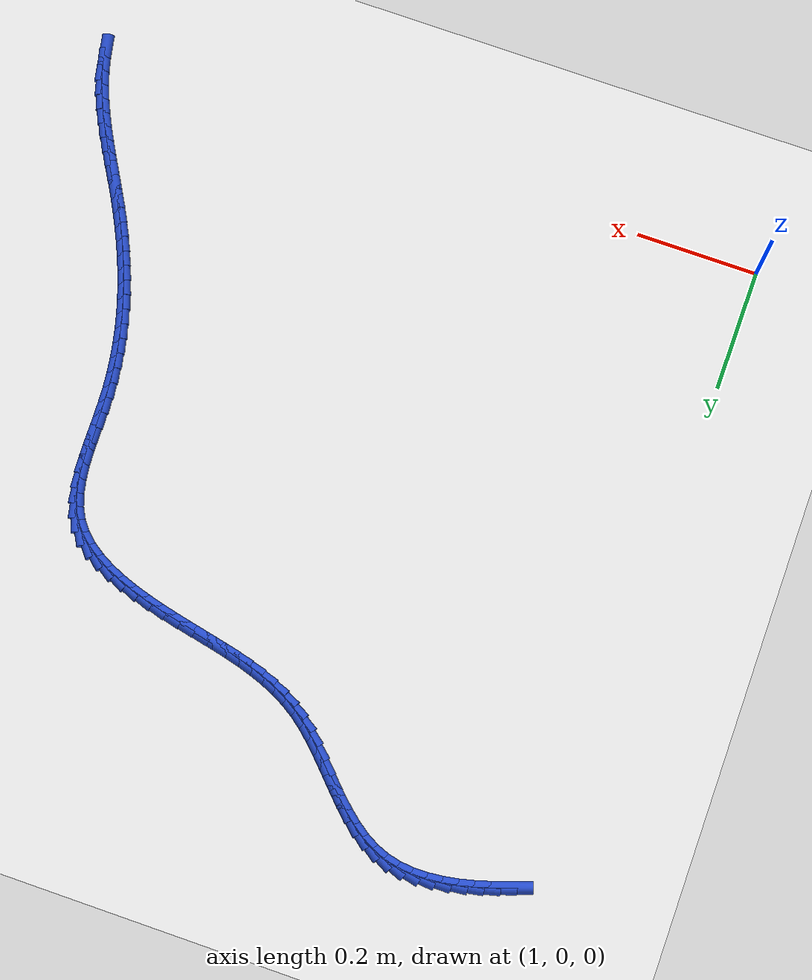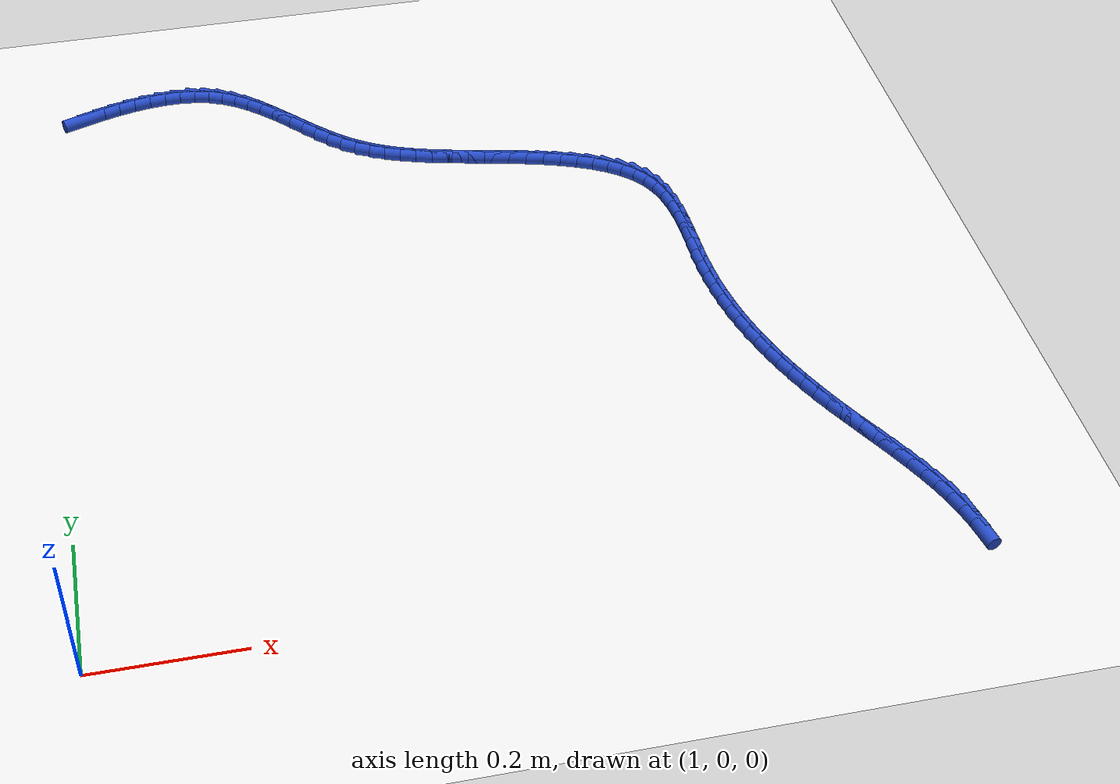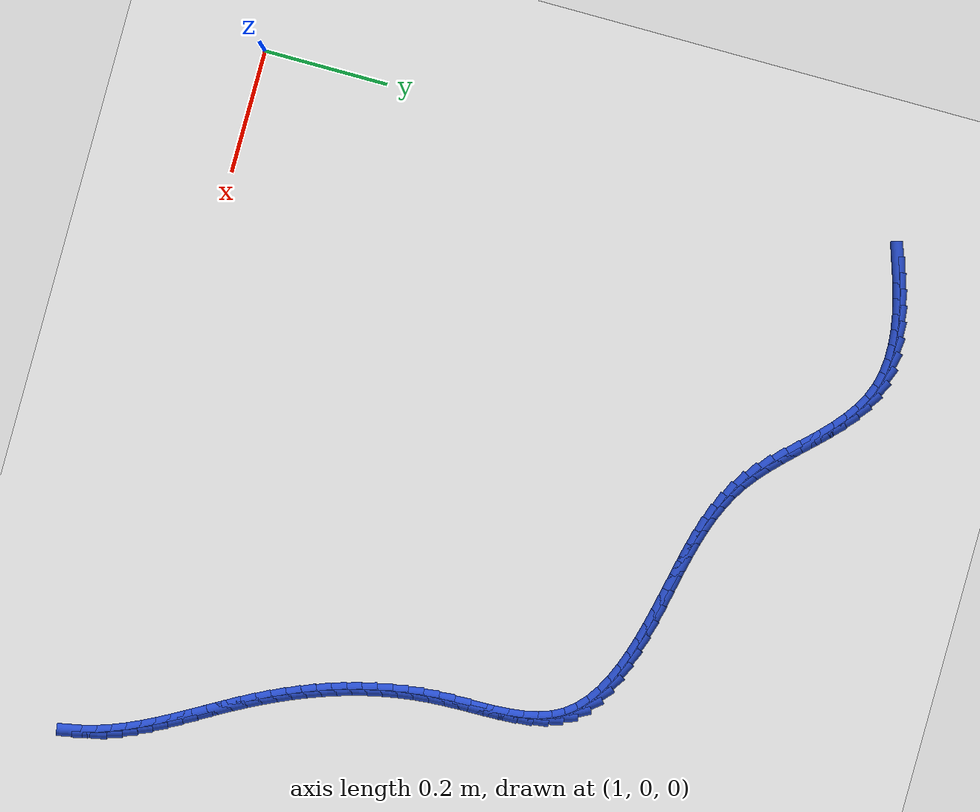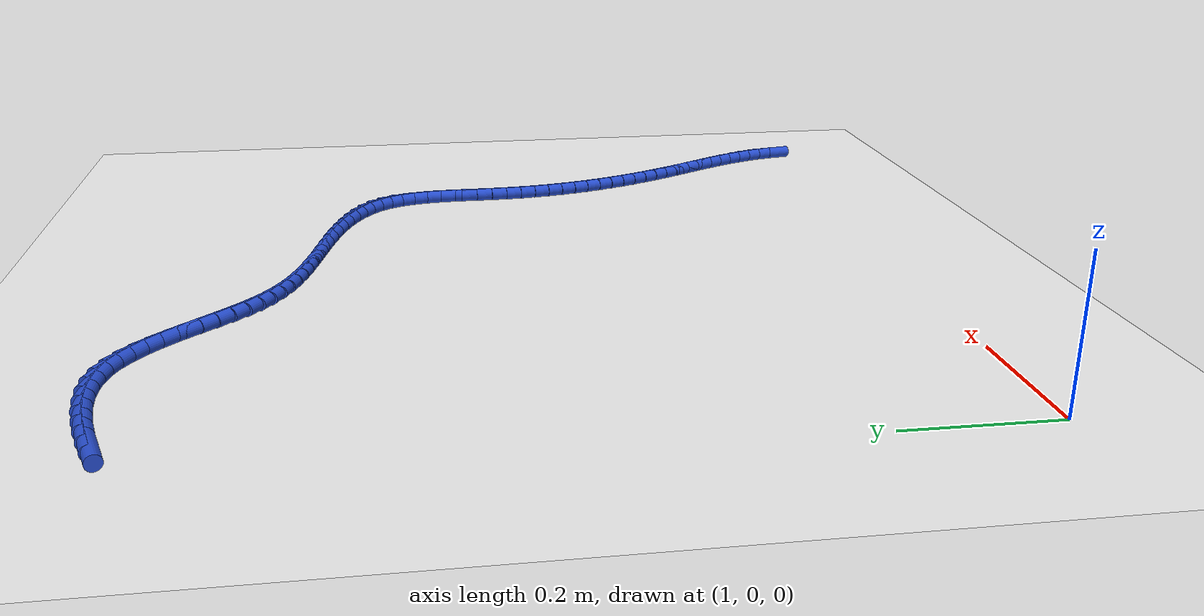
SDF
<sdf version="1.6">
 <world name="default">
  <model name="ground_plane">
   <static>1</static>
   <link name="link">
    <collision name="collision">
     <geometry><plane><normal>0 0 1</normal><size>100 100</size></plane></geometry>
     <surface><friction><ode><mu>100</mu><mu2>50</mu2></ode></friction></surface>
    </collision>
    <visual name="visual">
     <cast_shadows>0</cast_shadows>
     <geometry><plane><normal>0 0 1</normal><size>100 100</size></plane></geometry>
     <material>
      <script><uri>file://media/materials/scripts/gazebo.material</uri><name>Gazebo/WhiteGlow</name></script>
     </material>
    </visual>
   </link>
  </model>
  <model name="line">
   <link name="link_70">
    <pose>1.064427669311558 1.0555635526010194 0.01 0 1.57 0.3261322489746391</pose>
    <collision name="collision">
     <geometry><cylinder><radius>0.01</radius><length>0.08</length></cylinder></geometry>
    </collision>
    <visual name="visual">
     <material>
      <script><name>Gazebo/Blue</name><uri>file://media/materials/scripts/gazebo.material</uri></script>
     </material>
     <geometry><cylinder><radius>0.01</radius><length>0.08</length></cylinder></geometry>
    </visual>
   </link>
   <link name="link_71">
    <pose>1.087949762315982 1.0635189369853828 0.01 0 1.57 0.28473856860296326</pose>
    <collision name="collision">
     <geometry><cylinder><radius>0.01</radius><length>0.08</length></cylinder></geometry>
    </collision>
    <visual name="visual">
     <material>
      <script><name>Gazebo/Blue</name><uri>file://media/materials/scripts/gazebo.material</uri></script>
     </material>
     <geometry><cylinder><radius>0.01</radius><length>0.08</length></cylinder></geometry>
    </visual>
   </link>
   <link name="link_72">
    <pose>1.1120686810617832 1.070578345602721 0.01 0 1.57 0.23399113808751015</pose>
    <collision name="collision">
     <geometry><cylinder><radius>0.01</radius><length>0.08</length></cylinder></geometry>
    </collision>
    <visual name="visual">
     <material>
      <script><name>Gazebo/Blue</name><uri>file://media/materials/scripts/gazebo.material</uri></script>
     </material>
     <geometry><cylinder><radius>0.01</radius><length>0.08</length></cylinder></geometry>
    </visual>
   </link>
   <link name="link_73">
    <pose>1.136674478790447 1.0764433163095641 0.01 0 1.57 0.1729173757470133</pose>
    <collision name="collision">
     <geometry><cylinder><radius>0.01</radius><length>0.08</length></cylinder></geometry>
    </collision>
    <visual name="visual">
     <material>
      <script><name>Gazebo/Blue</name><uri>file://media/materials/scripts/gazebo.material</uri></script>
     </material>
     <geometry><cylinder><radius>0.01</radius><length>0.08</length></cylinder></geometry>
    </visual>
   </link>
   <link name="link_74">
    <pose>1.1614755834262454 1.0807751187825574 0.01 0 1.57 0.09921704525602507</pose>
    <collision name="collision">
     <geometry><cylinder><radius>0.01</radius><length>0.08</length></cylinder></geometry>
    </collision>
    <visual name="visual">
     <material>
      <script><name>Gazebo/Blue</name><uri>file://media/materials/scripts/gazebo.material</uri></script>
     </material>
     <geometry><cylinder><radius>0.01</radius><length>0.08</length></cylinder></geometry>
    </visual>
   </link>
   <link name="link_75">
    <pose>1.18617479192804 1.0832337742560494 0.01 0 1.57 0.010103713938598272</pose>
    <collision name="collision">
     <geometry><cylinder><radius>0.01</radius><length>0.08</length></cylinder></geometry>
    </collision>
    <visual name="visual">
     <material>
      <script><name>Gazebo/Blue</name><uri>file://media/materials/scripts/gazebo.material</uri></script>
     </material>
     <geometry><cylinder><radius>0.01</radius><length>0.08</length></cylinder></geometry>
    </visual>
   </link>
   <link name="link_76">
    <pose>1.2104749012546938 1.083479303964389 0.01 0 1.57 -0.09745313888400436</pose>
    <collision name="collision">
     <geometry><cylinder><radius>0.01</radius><length>0.08</length></cylinder></geometry>
    </collision>
    <visual name="visual">
     <material>
      <script><name>Gazebo/Blue</name><uri>file://media/materials/scripts/gazebo.material</uri></script>
     </material>
     <geometry><cylinder><radius>0.01</radius><length>0.08</length></cylinder></geometry>
    </visual>
   </link>
   <link name="link_77">
    <pose>1.2340787083650686 1.0811717291419265 0.01 0 1.57 -0.2260805146527173</pose>
    <collision name="collision">
     <geometry><cylinder><radius>0.01</radius><length>0.08</length></cylinder></geometry>
    </collision>
    <visual name="visual">
     <material>
      <script><name>Gazebo/Blue</name><uri>file://media/materials/scripts/gazebo.material</uri></script>
     </material>
     <geometry><cylinder><radius>0.01</radius><length>0.08</length></cylinder></geometry>
    </visual>
   </link>
   <link name="link_78">
    <pose>1.2566890102180275 1.0759710710230097 0.01 0 1.57 -0.3727503701952634</pose>
    <collision name="collision">
     <geometry><cylinder><radius>0.01</radius><length>0.08</length></cylinder></geometry>
    </collision>
    <visual name="visual">
     <material>
      <script><name>Gazebo/Blue</name><uri>file://media/materials/scripts/gazebo.material</uri></script>
     </material>
     <geometry><cylinder><radius>0.01</radius><length>0.08</length></cylinder></geometry>
    </visual>
   </link>
   <link name="link_79">
    <pose>1.2780557138143414 1.0676160344169114 0.01 0 1.57 -0.5076221766810302</pose>
    <collision name="collision">
     <geometry><cylinder><radius>0.01</radius><length>0.08</length></cylinder></geometry>
    </collision>
    <visual name="visual">
     <material>
      <script><name>Gazebo/Blue</name><uri>file://media/materials/scripts/gazebo.material</uri></script>
     </material>
     <geometry><cylinder><radius>0.01</radius><length>0.08</length></cylinder></geometry>
    </visual>
   </link>
   <link name="link_80">
    <pose>1.2982505502266855 1.0563828373136752 0.01 0 1.57 -0.6159407088837092</pose>
    <collision name="collision">
     <geometry><cylinder><radius>0.01</radius><length>0.08</length></cylinder></geometry>
    </collision>
    <visual name="visual">
     <material>
      <script><name>Gazebo/Blue</name><uri>file://media/materials/scripts/gazebo.material</uri></script>
     </material>
     <geometry><cylinder><radius>0.01</radius><length>0.08</length></cylinder></geometry>
    </visual>
   </link>
   <link name="link_81">
    <pose>1.3174797914663856 1.0427724090726684 0.01 0 1.57 -0.6977342186488167</pose>
    <collision name="collision">
     <geometry><cylinder><radius>0.01</radius><length>0.08</length></cylinder></geometry>
    </collision>
    <visual name="visual">
     <material>
      <script><name>Gazebo/Blue</name><uri>file://media/materials/scripts/gazebo.material</uri></script>
     </material>
     <geometry><cylinder><radius>0.01</radius><length>0.08</length></cylinder></geometry>
    </visual>
   </link>
   <link name="link_82">
    <pose>1.335950161943517 1.027286434653326 0.01 0 1.57 -0.7549749041859835</pose>
    <collision name="collision">
     <geometry><cylinder><radius>0.01</radius><length>0.08</length></cylinder></geometry>
    </collision>
    <visual name="visual">
     <material>
      <script><name>Gazebo/Blue</name><uri>file://media/materials/scripts/gazebo.material</uri></script>
     </material>
     <geometry><cylinder><radius>0.01</radius><length>0.08</length></cylinder></geometry>
    </visual>
   </link>
   <link name="link_83">
    <pose>1.3538683860681522 1.0104265990150818 0.01 0 1.57 -0.7899077080704238</pose>
    <collision name="collision">
     <geometry><cylinder><radius>0.01</radius><length>0.08</length></cylinder></geometry>
    </collision>
    <visual name="visual">
     <material>
      <script><name>Gazebo/Blue</name><uri>file://media/materials/scripts/gazebo.material</uri></script>
     </material>
     <geometry><cylinder><radius>0.01</radius><length>0.08</length></cylinder></geometry>
    </visual>
   </link>
   <link name="link_84">
    <pose>1.3714411882503674 0.9926945871173714 0.01 0 1.57 -0.8042046783027027</pose>
    <collision name="collision">
     <geometry><cylinder><radius>0.01</radius><length>0.08</length></cylinder></geometry>
    </collision>
    <visual name="visual">
     <material>
      <script><name>Gazebo/Blue</name><uri>file://media/materials/scripts/gazebo.material</uri></script>
     </material>
     <geometry><cylinder><radius>0.01</radius><length>0.08</length></cylinder></geometry>
    </visual>
   </link>
   <link name="link_85">
    <pose>1.3888752929002357 0.9745920839196293 0.01 0 1.57 -0.7986235692636736</pose>
    <collision name="collision">
     <geometry><cylinder><radius>0.01</radius><length>0.08</length></cylinder></geometry>
    </collision>
    <visual name="visual">
     <material>
      <script><name>Gazebo/Blue</name><uri>file://media/materials/scripts/gazebo.material</uri></script>
     </material>
     <geometry><cylinder><radius>0.01</radius><length>0.08</length></cylinder></geometry>
    </visual>
   </link>
   <link name="link_86">
    <pose>1.4063774244278326 0.95662077438129 0.01 0 1.57 -0.7729127527242137</pose>
    <collision name="collision">
     <geometry><cylinder><radius>0.01</radius><length>0.08</length></cylinder></geometry>
    </collision>
    <visual name="visual">
     <material>
      <script><name>Gazebo/Blue</name><uri>file://media/materials/scripts/gazebo.material</uri></script>
     </material>
     <geometry><cylinder><radius>0.01</radius><length>0.08</length></cylinder></geometry>
    </visual>
   </link>
   <link name="link_87">
    <pose>1.4241543072432323 0.9392823434617882 0.01 0 1.57 -0.7258528964914208</pose>
    <collision name="collision">
     <geometry><cylinder><radius>0.01</radius><length>0.08</length></cylinder></geometry>
    </collision>
    <visual name="visual">
     <material>
      <script><name>Gazebo/Blue</name><uri>file://media/materials/scripts/gazebo.material</uri></script>
     </material>
     <geometry><cylinder><radius>0.01</radius><length>0.08</length></cylinder></geometry>
    </visual>
   </link>
   <link name="link_88">
    <pose>1.4424126657565086 0.923078476120559 0.01 0 1.57 -0.6554803673587231</pose>
    <collision name="collision">
     <geometry><cylinder><radius>0.01</radius><length>0.08</length></cylinder></geometry>
    </collision>
    <visual name="visual">
     <material>
      <script><name>Gazebo/Blue</name><uri>file://media/materials/scripts/gazebo.material</uri></script>
     </material>
     <geometry><cylinder><radius>0.01</radius><length>0.08</length></cylinder></geometry>
    </visual>
   </link>
   <link name="link_89">
    <pose>1.4613591804946435 0.9085107246030103 0.01 0 1.57 -0.567021099565685</pose>
    <collision name="collision">
     <geometry><cylinder><radius>0.01</radius><length>0.08</length></cylinder></geometry>
    </collision>
    <visual name="visual">
     <material>
      <script><name>Gazebo/Blue</name><uri>file://media/materials/scripts/gazebo.material</uri></script>
     </material>
     <geometry><cylinder><radius>0.01</radius><length>0.08</length></cylinder></geometry>
    </visual>
   </link>
   <link name="link_90">
    <pose>1.481144709212888 0.8959118183996143 0.01 0 1.57 -0.48254451546066524</pose>
    <collision name="collision">
     <geometry><cylinder><radius>0.01</radius><length>0.08</length></cylinder></geometry>
    </collision>
    <visual name="visual">
     <material>
      <script><name>Gazebo/Blue</name><uri>file://media/materials/scripts/gazebo.material</uri></script>
     </material>
     <geometry><cylinder><radius>0.01</radius><length>0.08</length></cylinder></geometry>
    </visual>
   </link>
   <link name="link_91">
    <pose>1.5017549943236743 0.8851151347437773 0.01 0 1.57 -0.40826981175041877</pose>
    <collision name="collision">
     <geometry><cylinder><radius>0.01</radius><length>0.08</length></cylinder></geometry>
    </collision>
    <visual name="visual">
     <material>
      <script><name>Gazebo/Blue</name><uri>file://media/materials/scripts/gazebo.material</uri></script>
     </material>
     <geometry><cylinder><radius>0.01</radius><length>0.08</length></cylinder></geometry>
    </visual>
   </link>
   <link name="link_92">
    <pose>1.5231453958139465 0.8758621664172124 0.01 0 1.57 -0.345653370475576</pose>
    <collision name="collision">
     <geometry><cylinder><radius>0.01</radius><length>0.08</length></cylinder></geometry>
    </collision>
    <visual name="visual">
     <material>
      <script><name>Gazebo/Blue</name><uri>file://media/materials/scripts/gazebo.material</uri></script>
     </material>
     <geometry><cylinder><radius>0.01</radius><length>0.08</length></cylinder></geometry>
    </visual>
   </link>
   <link name="link_93">
    <pose>1.545271273670648 0.8678944062016315 0.01 0 1.57 -0.2953141566225488</pose>
    <collision name="collision">
     <geometry><cylinder><radius>0.01</radius><length>0.08</length></cylinder></geometry>
    </collision>
    <visual name="visual">
     <material>
      <script><name>Gazebo/Blue</name><uri>file://media/materials/scripts/gazebo.material</uri></script>
     </material>
     <geometry><cylinder><radius>0.01</radius><length>0.08</length></cylinder></geometry>
    </visual>
   </link>
   <link name="link_94">
    <pose>1.568087987880723 0.8609533468787465 0.01 0 1.57 -0.2572605557919676</pose>
    <collision name="collision">
     <geometry><cylinder><radius>0.01</radius><length>0.08</length></cylinder></geometry>
    </collision>
    <visual name="visual">
     <material>
      <script><name>Gazebo/Blue</name><uri>file://media/materials/scripts/gazebo.material</uri></script>
     </material>
     <geometry><cylinder><radius>0.01</radius><length>0.08</length></cylinder></geometry>
    </visual>
   </link>
   <link name="link_95">
    <pose>1.5915508984311164 0.8547804812302697 0.01 0 1.57 -0.23112813983024166</pose>
    <collision name="collision">
     <geometry><cylinder><radius>0.01</radius><length>0.08</length></cylinder></geometry>
    </collision>
    <visual name="visual">
     <material>
      <script><name>Gazebo/Blue</name><uri>file://media/materials/scripts/gazebo.material</uri></script>
     </material>
     <geometry><cylinder><radius>0.01</radius><length>0.08</length></cylinder></geometry>
    </visual>
   </link>
   <link name="link_96">
    <pose>1.615615365308771 0.8491173020379136 0.01 0 1.57 -0.21636805085363833</pose>
    <collision name="collision">
     <geometry><cylinder><radius>0.01</radius><length>0.08</length></cylinder></geometry>
    </collision>
    <visual name="visual">
     <material>
      <script><name>Gazebo/Blue</name><uri>file://media/materials/scripts/gazebo.material</uri></script>
     </material>
     <geometry><cylinder><radius>0.01</radius><length>0.08</length></cylinder></geometry>
    </visual>
   </link>
   <link name="link_97">
    <pose>1.6402367485006317 0.84370530208339 0.01 0 1.57 -0.2123690058252242</pose>
    <collision name="collision">
     <geometry><cylinder><radius>0.01</radius><length>0.08</length></cylinder></geometry>
    </collision>
    <visual name="visual">
     <material>
      <script><name>Gazebo/Blue</name><uri>file://media/materials/scripts/gazebo.material</uri></script>
     </material>
     <geometry><cylinder><radius>0.01</radius><length>0.08</length></cylinder></geometry>
    </visual>
   </link>
   <link name="link_98">
    <pose>1.6653704079936424 0.8382859741484117 0.01 0 1.57 -0.21852310839390165</pose>
    <collision name="collision">
     <geometry><cylinder><radius>0.01</radius><length>0.08</length></cylinder></geometry>
    </collision>
    <visual name="visual">
     <material>
      <script><name>Gazebo/Blue</name><uri>file://media/materials/scripts/gazebo.material</uri></script>
     </material>
     <geometry><cylinder><radius>0.01</radius><length>0.08</length></cylinder></geometry>
    </visual>
   </link>
   <link name="link_99">
    <pose>1.6909685762595899 0.8326014097111497 0.01 0 1.57 -0.23448870195227672</pose>
    <collision name="collision">
     <geometry><cylinder><radius>0.01</radius><length>0.08</length></cylinder></geometry>
    </collision>
    <visual name="visual">
     <material>
      <script><name>Gazebo/Blue</name><uri>file://media/materials/scripts/gazebo.material</uri></script>
     </material>
     <geometry><cylinder><radius>0.01</radius><length>0.08</length></cylinder></geometry>
    </visual>
   </link>
   <link name="link_100">
    <pose>1.7168398869924058 0.8264211891908354 0.01 0 1.57 -0.26062230530512154</pose>
    <collision name="collision">
     <geometry><cylinder><radius>0.01</radius><length>0.08</length></cylinder></geometry>
    </collision>
    <visual name="visual">
     <material>
      <script><name>Gazebo/Blue</name><uri>file://media/materials/scripts/gazebo.material</uri></script>
     </material>
     <geometry><cylinder><radius>0.01</radius><length>0.08</length></cylinder></geometry>
    </visual>
   </link>
   <link name="link_101">
    <pose>1.7425925922709768 0.8195532518178804 0.01 0 1.57 -0.2978675626449142</pose>
    <collision name="collision">
     <geometry><cylinder><radius>0.01</radius><length>0.08</length></cylinder></geometry>
    </collision>
    <visual name="visual">
     <material>
      <script><name>Gazebo/Blue</name><uri>file://media/materials/scripts/gazebo.material</uri></script>
     </material>
     <geometry><cylinder><radius>0.01</radius><length>0.08</length></cylinder></geometry>
    </visual>
   </link>
   <link name="link_102">
    <pose>1.767820063369096 0.8118083854372895 0.01 0 1.57 -0.34790702532621126</pose>
    <collision name="collision">
     <geometry><cylinder><radius>0.01</radius><length>0.08</length></cylinder></geometry>
    </collision>
    <visual name="visual">
     <material>
      <script><name>Gazebo/Blue</name><uri>file://media/materials/scripts/gazebo.material</uri></script>
     </material>
     <geometry><cylinder><radius>0.01</radius><length>0.08</length></cylinder></geometry>
    </visual>
   </link>
   <link name="link_103">
    <pose>1.7921156715605562 0.8029973778940672 0.01 0 1.57 -0.4132372475531136</pose>
    <collision name="collision">
     <geometry><cylinder><radius>0.01</radius><length>0.08</length></cylinder></geometry>
    </collision>
    <visual name="visual">
     <material>
      <script><name>Gazebo/Blue</name><uri>file://media/materials/scripts/gazebo.material</uri></script>
     </material>
     <geometry><cylinder><radius>0.01</radius><length>0.08</length></cylinder></geometry>
    </visual>
   </link>
   <link name="link_104">
    <pose>1.8150727881191508 0.7929310170332186 0.01 0 1.57 -0.4971913252740389</pose>
    <collision name="collision">
     <geometry><cylinder><radius>0.01</radius><length>0.08</length></cylinder></geometry>
    </collision>
    <visual name="visual">
     <material>
      <script><name>Gazebo/Blue</name><uri>file://media/materials/scripts/gazebo.material</uri></script>
     </material>
     <geometry><cylinder><radius>0.01</radius><length>0.08</length></cylinder></geometry>
    </visual>
   </link>
   <link name="link_105">
    <pose>1.8362847843186727 0.7814200906997487 0.01 0 1.57 -0.6037388785395561</pose>
    <collision name="collision">
     <geometry><cylinder><radius>0.01</radius><length>0.08</length></cylinder></geometry>
    </collision>
    <visual name="visual">
     <material>
      <script><name>Gazebo/Blue</name><uri>file://media/materials/scripts/gazebo.material</uri></script>
     </material>
     <geometry><cylinder><radius>0.01</radius><length>0.08</length></cylinder></geometry>
    </visual>
   </link>
   <link name="link_106">
    <pose>1.855345031432914 0.7682753867386617 0.01 0 1.57 -0.7366856382858623</pose>
    <collision name="collision">
     <geometry><cylinder><radius>0.01</radius><length>0.08</length></cylinder></geometry>
    </collision>
    <visual name="visual">
     <material>
      <script><name>Gazebo/Blue</name><uri>file://media/materials/scripts/gazebo.material</uri></script>
     </material>
     <geometry><cylinder><radius>0.01</radius><length>0.08</length></cylinder></geometry>
    </visual>
   </link>
   <link name="link_107">
    <pose>1.8718469007356682 0.7533076929949628 0.01 0 1.57 -0.8977473937103624</pose>
    <collision name="collision">
     <geometry><cylinder><radius>0.01</radius><length>0.08</length></cylinder></geometry>
    </collision>
    <visual name="visual">
     <material>
      <script><name>Gazebo/Blue</name><uri>file://media/materials/scripts/gazebo.material</uri></script>
     </material>
     <geometry><cylinder><radius>0.01</radius><length>0.08</length></cylinder></geometry>
    </visual>
   </link>
   <link name="link_108">
    <pose>1.8853837635007276 0.7363277973136568 0.01 0 1.57 -1.0781010402646465</pose>
    <collision name="collision">
     <geometry><cylinder><radius>0.01</radius><length>0.08</length></cylinder></geometry>
    </collision>
    <visual name="visual">
     <material>
      <script><name>Gazebo/Blue</name><uri>file://media/materials/scripts/gazebo.material</uri></script>
     </material>
     <geometry><cylinder><radius>0.01</radius><length>0.08</length></cylinder></geometry>
    </visual>
   </link>
   <link name="link_109">
    <pose>1.895651248455736 0.7172025580770043 0.01 0 1.57 -1.2370664883685791</pose>
    <collision name="collision">
     <geometry><cylinder><radius>0.01</radius><length>0.08</length></cylinder></geometry>
    </collision>
    <visual name="visual">
     <material>
      <script><name>Gazebo/Blue</name><uri>file://media/materials/scripts/gazebo.material</uri></script>
     </material>
     <geometry><cylinder><radius>0.01</radius><length>0.08</length></cylinder></geometry>
    </visual>
   </link>
   <link name="link_110">
    <pose>1.9029557589439563 0.6961337379656903 0.01 0 1.57 -1.3591857442063038</pose>
    <collision name="collision">
     <geometry><cylinder><radius>0.01</radius><length>0.08</length></cylinder></geometry>
    </collision>
    <visual name="visual">
     <material>
      <script><name>Gazebo/Blue</name><uri>file://media/materials/scripts/gazebo.material</uri></script>
     </material>
     <geometry><cylinder><radius>0.01</radius><length>0.08</length></cylinder></geometry>
    </visual>
   </link>
   <link name="link_111">
    <pose>1.9078294967931066 0.6734469110976916 0.01 0 1.57 -1.447338747829293</pose>
    <collision name="collision">
     <geometry><cylinder><radius>0.01</radius><length>0.08</length></cylinder></geometry>
    </collision>
    <visual name="visual">
     <material>
      <script><name>Gazebo/Blue</name><uri>file://media/materials/scripts/gazebo.material</uri></script>
     </material>
     <geometry><cylinder><radius>0.01</radius><length>0.08</length></cylinder></geometry>
    </visual>
   </link>
   <link name="link_112">
    <pose>1.9108050264058478 0.6494678504006656 0.01 0 1.57 -1.5063496350348813</pose>
    <collision name="collision">
     <geometry><cylinder><radius>0.01</radius><length>0.08</length></cylinder></geometry>
    </collision>
    <visual name="visual">
     <material>
      <script><name>Gazebo/Blue</name><uri>file://media/materials/scripts/gazebo.material</uri></script>
     </material>
     <geometry><cylinder><radius>0.01</radius><length>0.08</length></cylinder></geometry>
    </visual>
   </link>
   <link name="link_113">
    <pose>1.91241491218484 0.62452232880227 0.01 0 1.57 -1.5404452971274463</pose>
    <collision name="collision">
     <geometry><cylinder><radius>0.01</radius><length>0.08</length></cylinder></geometry>
    </collision>
    <visual name="visual">
     <material>
      <script><name>Gazebo/Blue</name><uri>file://media/materials/scripts/gazebo.material</uri></script>
     </material>
     <geometry><cylinder><radius>0.01</radius><length>0.08</length></cylinder></geometry>
    </visual>
   </link>
   <link name="link_114">
    <pose>1.9131917185327427 0.5989361192301631 0.01 0 1.57 -1.5524095713324675</pose>
    <collision name="collision">
     <geometry><cylinder><radius>0.01</radius><length>0.08</length></cylinder></geometry>
    </collision>
    <visual name="visual">
     <material>
      <script><name>Gazebo/Blue</name><uri>file://media/materials/scripts/gazebo.material</uri></script>
     </material>
     <geometry><cylinder><radius>0.01</radius><length>0.08</length></cylinder></geometry>
    </visual>
   </link>
   <link name="link_115">
    <pose>1.913668009852218 0.5730349946120027 0.01 0 1.57 -1.5434438069736072</pose>
    <collision name="collision">
     <geometry><cylinder><radius>0.01</radius><length>0.08</length></cylinder></geometry>
    </collision>
    <visual name="visual">
     <material>
      <script><name>Gazebo/Blue</name><uri>file://media/materials/scripts/gazebo.material</uri></script>
     </material>
     <geometry><cylinder><radius>0.01</radius><length>0.08</length></cylinder></geometry>
    </visual>
   </link>
   <link name="link_116">
    <pose>1.9143763505459246 0.5471447278754464 0.01 0 1.57 -1.5137284135742017</pose>
    <collision name="collision">
     <geometry><cylinder><radius>0.01</radius><length>0.08</length></cylinder></geometry>
    </collision>
    <visual name="visual">
     <material>
      <script><name>Gazebo/Blue</name><uri>file://media/materials/scripts/gazebo.material</uri></script>
     </material>
     <geometry><cylinder><radius>0.01</radius><length>0.08</length></cylinder></geometry>
    </visual>
   </link>
   <link name="link_117">
    <pose>1.915836671201139 0.5215833409169933 0.01 0 1.57 -1.4732675741571672</pose>
    <collision name="collision">
     <geometry><cylinder><radius>0.01</radius><length>0.08</length></cylinder></geometry>
    </collision>
    <visual name="visual">
     <material>
      <script><name>Gazebo/Blue</name><uri>file://media/materials/scripts/gazebo.material</uri></script>
     </material>
     <geometry><cylinder><radius>0.01</radius><length>0.08</length></cylinder></geometry>
    </visual>
   </link>
   <link name="link_118">
    <pose>1.9182909668145787 0.49649833806922483 0.01 0 1.57 -1.4328420694375437</pose>
    <collision name="collision">
     <geometry><cylinder><radius>0.01</radius><length>0.08</length></cylinder></geometry>
    </collision>
    <visual name="visual">
     <material>
      <script><name>Gazebo/Blue</name><uri>file://media/materials/scripts/gazebo.material</uri></script>
     </material>
     <geometry><cylinder><radius>0.01</radius><length>0.08</length></cylinder></geometry>
    </visual>
   </link>
   <link name="link_119">
    <pose>1.9217101439106323 0.47187090690832684 0.01 0 1.57 -1.393163959597484</pose>
    <collision name="collision">
     <geometry><cylinder><radius>0.01</radius><length>0.08</length></cylinder></geometry>
    </collision>
    <visual name="visual">
     <material>
      <script><name>Gazebo/Blue</name><uri>file://media/materials/scripts/gazebo.material</uri></script>
     </material>
     <geometry><cylinder><radius>0.01</radius><length>0.08</length></cylinder></geometry>
    </visual>
   </link>
   <link name="link_120">
    <pose>1.926053844889064 0.44767532430471046 0.01 0 1.57 -1.3544791178118671</pose>
    <collision name="collision">
     <geometry><cylinder><radius>0.01</radius><length>0.08</length></cylinder></geometry>
    </collision>
    <visual name="visual">
     <material>
      <script><name>Gazebo/Blue</name><uri>file://media/materials/scripts/gazebo.material</uri></script>
     </material>
     <geometry><cylinder><radius>0.01</radius><length>0.08</length></cylinder></geometry>
    </visual>
   </link>
   <link name="link_121">
    <pose>1.9312817121496368 0.42388586712878684 0.01 0 1.57 -1.317015690436374</pose>
    <collision name="collision">
     <geometry><cylinder><radius>0.01</radius><length>0.08</length></cylinder></geometry>
    </collision>
    <visual name="visual">
     <material>
      <script><name>Gazebo/Blue</name><uri>file://media/materials/scripts/gazebo.material</uri></script>
     </material>
     <geometry><cylinder><radius>0.01</radius><length>0.08</length></cylinder></geometry>
    </visual>
   </link>
   <link name="link_122">
    <pose>1.9373533880921145 0.40047681225096654 0.01 0 1.57 -1.2809792899732582</pose>
    <collision name="collision">
     <geometry><cylinder><radius>0.01</radius><length>0.08</length></cylinder></geometry>
    </collision>
    <visual name="visual">
     <material>
      <script><name>Gazebo/Blue</name><uri>file://media/materials/scripts/gazebo.material</uri></script>
     </material>
     <geometry><cylinder><radius>0.01</radius><length>0.08</length></cylinder></geometry>
    </visual>
   </link>
   <link name="link_123">
    <pose>1.944228515116261 0.3774224365416617 0.01 0 1.57 -1.2465496601182042</pose>
    <collision name="collision">
     <geometry><cylinder><radius>0.01</radius><length>0.08</length></cylinder></geometry>
    </collision>
    <visual name="visual">
     <material>
      <script><name>Gazebo/Blue</name><uri>file://media/materials/scripts/gazebo.material</uri></script>
     </material>
     <geometry><cylinder><radius>0.01</radius><length>0.08</length></cylinder></geometry>
    </visual>
   </link>
   <link name="link_124">
    <pose>1.9518667356218393 0.3546970168712829 0.01 0 1.57 -1.2138788702677745</pose>
    <collision name="collision">
     <geometry><cylinder><radius>0.01</radius><length>0.08</length></cylinder></geometry>
    </collision>
    <visual name="visual">
     <material>
      <script><name>Gazebo/Blue</name><uri>file://media/materials/scripts/gazebo.material</uri></script>
     </material>
     <geometry><cylinder><radius>0.01</radius><length>0.08</length></cylinder></geometry>
    </visual>
   </link>
   <link name="link_125">
    <pose>1.9602276920086126 0.33227483011024134 0.01 0 1.57 -1.1830909514221986</pose>
    <collision name="collision">
     <geometry><cylinder><radius>0.01</radius><length>0.08</length></cylinder></geometry>
    </collision>
    <visual name="visual">
     <material>
      <script><name>Gazebo/Blue</name><uri>file://media/materials/scripts/gazebo.material</uri></script>
     </material>
     <geometry><cylinder><radius>0.01</radius><length>0.08</length></cylinder></geometry>
    </visual>
   </link>
   <link name="link_126">
    <pose>1.9692710266763453 0.31013015312894776 0.01 0 1.57 -1.1542827749921358</pose>
    <collision name="collision">
     <geometry><cylinder><radius>0.01</radius><length>0.08</length></cylinder></geometry>
    </collision>
    <visual name="visual">
     <material>
      <script><name>Gazebo/Blue</name><uri>file://media/materials/scripts/gazebo.material</uri></script>
     </material>
     <geometry><cylinder><radius>0.01</radius><length>0.08</length></cylinder></geometry>
    </visual>
   </link>
   <link name="link_127">
    <pose>1.9789563820248008 0.288237262797814 0.01 0 1.57 -1.127525909158681</pose>
    <collision name="collision">
     <geometry><cylinder><radius>0.01</radius><length>0.08</length></cylinder></geometry>
    </collision>
    <visual name="visual">
     <material>
      <script><name>Gazebo/Blue</name><uri>file://media/materials/scripts/gazebo.material</uri></script>
     </material>
     <geometry><cylinder><radius>0.01</radius><length>0.08</length></cylinder></geometry>
    </visual>
   </link>
   <link name="link_128">
    <pose>1.9892434004537423 0.2665704359872507 0.01 0 1.57 -1.102869163234974</pose>
    <collision name="collision">
     <geometry><cylinder><radius>0.01</radius><length>0.08</length></cylinder></geometry>
    </collision>
    <visual name="visual">
     <material>
      <script><name>Gazebo/Blue</name><uri>file://media/materials/scripts/gazebo.material</uri></script>
     </material>
     <geometry><cylinder><radius>0.01</radius><length>0.08</length></cylinder></geometry>
    </visual>
   </link>
   <link name="link_129">
    <pose>2.000091724362933 0.24510394956766918 0.01 0 1.57 -1.0803437174459152</pose>
    <collision name="collision">
     <geometry><cylinder><radius>0.01</radius><length>0.08</length></cylinder></geometry>
    </collision>
    <visual name="visual">
     <material>
      <script><name>Gazebo/Blue</name><uri>file://media/materials/scripts/gazebo.material</uri></script>
     </material>
     <geometry><cylinder><radius>0.01</radius><length>0.08</length></cylinder></geometry>
    </visual>
   </link>
   <link name="link_130">
    <pose>2.0114609442817297 0.22381206603564618 0.01 0 1.57 -1.061681323650454</pose>
    <collision name="collision">
     <geometry><cylinder><radius>0.01</radius><length>0.08</length></cylinder></geometry>
    </collision>
    <visual name="visual">
     <material>
      <script><name>Gazebo/Blue</name><uri>file://media/materials/scripts/gazebo.material</uri></script>
     </material>
     <geometry><cylinder><radius>0.01</radius><length>0.08</length></cylinder></geometry>
    </visual>
   </link>
   <link name="link_131">
    <pose>2.0232693157058774 0.20265759351615828 0.01 0 1.57 -1.0516206823837209</pose>
    <collision name="collision">
     <geometry><cylinder><radius>0.01</radius><length>0.08</length></cylinder></geometry>
    </collision>
    <visual name="visual">
     <material>
      <script><name>Gazebo/Blue</name><uri>file://media/materials/scripts/gazebo.material</uri></script>
     </material>
     <geometry><cylinder><radius>0.01</radius><length>0.08</length></cylinder></geometry>
    </visual>
   </link>
   <link name="link_132">
    <pose>2.0353194549851543 0.18157129531327237 0.01 0 1.57 -1.0508872354672034</pose>
    <collision name="collision">
     <geometry><cylinder><radius>0.01</radius><length>0.08</length></cylinder></geometry>
    </collision>
    <visual name="visual">
     <material>
      <script><name>Gazebo/Blue</name><uri>file://media/materials/scripts/gazebo.material</uri></script>
     </material>
     <geometry><cylinder><radius>0.01</radius><length>0.08</length></cylinder></geometry>
    </visual>
   </link>
   <link name="link_133">
    <pose>2.04739391074366 0.16047837375366986 0.01 0 1.57 -1.05945673615122</pose>
    <collision name="collision">
     <geometry><cylinder><radius>0.01</radius><length>0.08</length></cylinder></geometry>
    </collision>
    <visual name="visual">
     <material>
      <script><name>Gazebo/Blue</name><uri>file://media/materials/scripts/gazebo.material</uri></script>
     </material>
     <geometry><cylinder><radius>0.01</radius><length>0.08</length></cylinder></geometry>
    </visual>
   </link>
   <link name="link_134">
    <pose>2.0592752316054934 0.13930403116403245 0.01 0 1.57 -1.0773985358434943</pose>
    <collision name="collision">
     <geometry><cylinder><radius>0.01</radius><length>0.08</length></cylinder></geometry>
    </collision>
    <visual name="visual">
     <material>
      <script><name>Gazebo/Blue</name><uri>file://media/materials/scripts/gazebo.material</uri></script>
     </material>
     <geometry><cylinder><radius>0.01</radius><length>0.08</length></cylinder></geometry>
    </visual>
   </link>
   <link name="link_135">
    <pose>2.070745966194755 0.11797346987104156 0.01 0 1.57 -1.1048543781436488</pose>
    <collision name="collision">
     <geometry><cylinder><radius>0.01</radius><length>0.08</length></cylinder></geometry>
    </collision>
    <visual name="visual">
     <material>
      <script><name>Gazebo/Blue</name><uri>file://media/materials/scripts/gazebo.material</uri></script>
     </material>
     <geometry><cylinder><radius>0.01</radius><length>0.08</length></cylinder></geometry>
    </visual>
   </link>
   <link name="link_136">
    <pose>2.081588663135542 0.09641189220137952 0.01 0 1.57 -1.141992351876899</pose>
    <collision name="collision">
     <geometry><cylinder><radius>0.01</radius><length>0.08</length></cylinder></geometry>
    </collision>
    <visual name="visual">
     <material>
      <script><name>Gazebo/Blue</name><uri>file://media/materials/scripts/gazebo.material</uri></script>
     </material>
     <geometry><cylinder><radius>0.01</radius><length>0.08</length></cylinder></geometry>
    </visual>
   </link>
   <link name="link_137">
    <pose>2.0915858710519557 0.07454450048172775 0.01 0 1.57 -1.1889319405968377</pose>
    <collision name="collision">
     <geometry><cylinder><radius>0.01</radius><length>0.08</length></cylinder></geometry>
    </collision>
    <visual name="visual">
     <material>
      <script><name>Gazebo/Blue</name><uri>file://media/materials/scripts/gazebo.material</uri></script>
     </material>
     <geometry><cylinder><radius>0.01</radius><length>0.08</length></cylinder></geometry>
    </visual>
   </link>
   <link name="link_138">
    <pose>2.1005201385680943 0.05229649703876797 0.01 0 1.57 -1.2456376499239257</pose>
    <collision name="collision">
     <geometry><cylinder><radius>0.01</radius><length>0.08</length></cylinder></geometry>
    </collision>
    <visual name="visual">
     <material>
      <script><name>Gazebo/Blue</name><uri>file://media/materials/scripts/gazebo.material</uri></script>
     </material>
     <geometry><cylinder><radius>0.01</radius><length>0.08</length></cylinder></geometry>
    </visual>
   </link>
   <link name="link_139">
    <pose>2.108174014308056 0.02959308419918185 0.01 0 1.57 -1.3113237464955498</pose>
    <collision name="collision">
     <geometry><cylinder><radius>0.01</radius><length>0.08</length></cylinder></geometry>
    </collision>
    <visual name="visual">
     <material>
      <script><name>Gazebo/Blue</name><uri>file://media/materials/scripts/gazebo.material</uri></script>
     </material>
     <geometry><cylinder><radius>0.01</radius><length>0.08</length></cylinder></geometry>
    </visual>
   </link>
   <link name="link_140">
    <pose>2.1143397477562167 0.0063662101517593175 0.01 0 1.57 -1.3789602995613992</pose>
    <collision name="collision">
     <geometry><cylinder><radius>0.01</radius><length>0.08</length></cylinder></geometry>
    </collision>
    <visual name="visual">
     <material>
      <script><name>Gazebo/Blue</name><uri>file://media/materials/scripts/gazebo.material</uri></script>
     </material>
     <geometry><cylinder><radius>0.01</radius><length>0.08</length></cylinder></geometry>
    </visual>
   </link>
  </model>
 </world>
</sdf>
